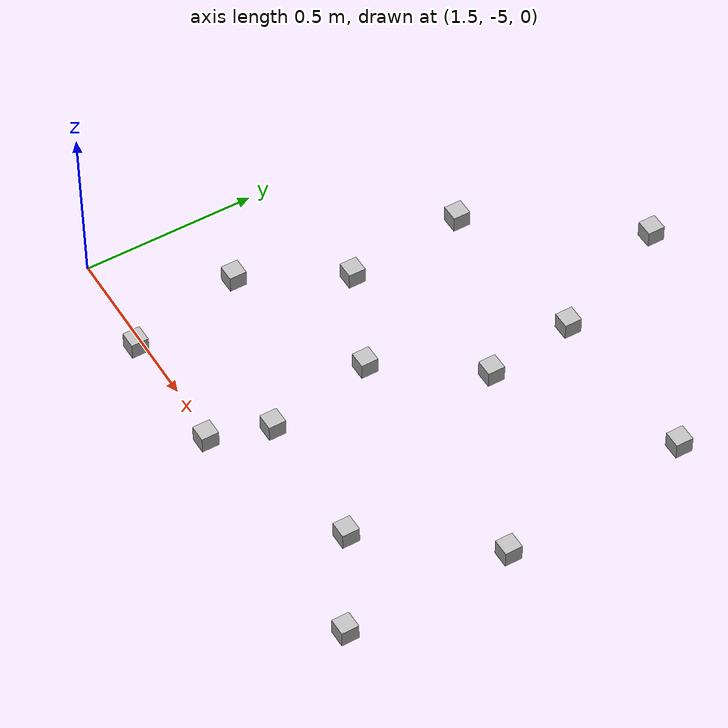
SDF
<sdf version="1.6">
 <world name="default">
  <model name="at0_1">
   <static>0</static>
   <link name="link">
    <inertial>
     <mass>0.01</mass>
     <inertia><ixx>4e-05</ixx><ixy>0</ixy><ixz>0</ixz><iyy>4e-05</iyy><iyz>0</iyz><izz>4e-05</izz></inertia>
    </inertial>
    <visual name="visual">
     <geometry><box><size>0.05 0.05 0.05</size></box></geometry>
     <material>
      <script>
       <uri>model://at0/materials/scripts</uri>
       <uri>model://at0/materials/textures</uri>
       <name>at0/Diffuse</name>
      </script>
     </material>
    </visual>
    <collision name="collision">
     <geometry><box><size>0.05 0.05 0.05</size></box></geometry>
     <surface><friction><ode><mu>0.8</mu><mu2>0.7</mu2></ode></friction></surface>
    </collision>
   </link>
   <pose>2.90292 -5.01991 0.025 0 -0 0</pose>
  </model>
  <model name="at0_3">
   <static>0</static>
   <link name="link">
    <inertial>
     <mass>0.01</mass>
     <inertia><ixx>4e-05</ixx><ixy>0</ixy><ixz>0</ixz><iyy>4e-05</iyy><iyz>0</iyz><izz>4e-05</izz></inertia>
    </inertial>
    <visual name="visual">
     <geometry><box><size>0.05 0.05 0.05</size></box></geometry>
     <material>
      <script>
       <uri>model://at0/materials/scripts</uri>
       <uri>model://at0/materials/textures</uri>
       <name>at0/Diffuse</name>
      </script>
     </material>
    </visual>
    <collision name="collision">
     <geometry><box><size>0.05 0.05 0.05</size></box></geometry>
     <surface><friction><ode><mu>0.8</mu><mu2>0.7</mu2></ode></friction></surface>
    </collision>
   </link>
   <pose>2.90118 -4.53855 0.025 0 -0 0</pose>
  </model>
  <model name="at0_4">
   <static>0</static>
   <link name="link">
    <inertial>
     <mass>0.01</mass>
     <inertia><ixx>4e-05</ixx><ixy>0</ixy><ixz>0</ixz><iyy>4e-05</iyy><iyz>0</iyz><izz>4e-05</izz></inertia>
    </inertial>
    <visual name="visual">
     <geometry><box><size>0.05 0.05 0.05</size></box></geometry>
     <material>
      <script>
       <uri>model://at0/materials/scripts</uri>
       <uri>model://at0/materials/textures</uri>
       <name>at0/Diffuse</name>
      </script>
     </material>
    </visual>
    <collision name="collision">
     <geometry><box><size>0.05 0.05 0.05</size></box></geometry>
     <surface><friction><ode><mu>0.8</mu><mu2>0.7</mu2></ode></friction></surface>
    </collision>
   </link>
   <pose>2.6418 -4.86366 0.025 0 -0 0</pose>
  </model>
  <model name="at0_6">
   <static>0</static>
   <link name="link">
    <inertial>
     <mass>0.01</mass>
     <inertia><ixx>4e-05</ixx><ixy>0</ixy><ixz>0</ixz><iyy>4e-05</iyy><iyz>0</iyz><izz>4e-05</izz></inertia>
    </inertial>
    <visual name="visual">
     <geometry><box><size>0.05 0.05 0.05</size></box></geometry>
     <material>
      <script>
       <uri>model://at0/materials/scripts</uri>
       <uri>model://at0/materials/textures</uri>
       <name>at0/Diffuse</name>
      </script>
     </material>
    </visual>
    <collision name="collision">
     <geometry><box><size>0.05 0.05 0.05</size></box></geometry>
     <surface><friction><ode><mu>0.8</mu><mu2>0.7</mu2></ode></friction></surface>
    </collision>
   </link>
   <pose>2.8308 -3.97412 0.025 0 -0 0</pose>
  </model>
  <model name="at0_7">
   <static>0</static>
   <link name="link">
    <inertial>
     <mass>0.01</mass>
     <inertia><ixx>4e-05</ixx><ixy>0</ixy><ixz>0</ixz><iyy>4e-05</iyy><iyz>0</iyz><izz>4e-05</izz></inertia>
    </inertial>
    <visual name="visual">
     <geometry><box><size>0.05 0.05 0.05</size></box></geometry>
     <material>
      <script>
       <uri>model://at0/materials/scripts</uri>
       <uri>model://at0/materials/textures</uri>
       <name>at0/Diffuse</name>
      </script>
     </material>
    </visual>
    <collision name="collision">
     <geometry><box><size>0.05 0.05 0.05</size></box></geometry>
     <surface><friction><ode><mu>0.8</mu><mu2>0.7</mu2></ode></friction></surface>
    </collision>
   </link>
   <pose>2.18519 -5.01696 0.025 0 -0 0</pose>
  </model>
  <model name="at0_8">
   <static>0</static>
   <link name="link">
    <inertial>
     <mass>0.01</mass>
     <inertia><ixx>4e-05</ixx><ixy>0</ixy><ixz>0</ixz><iyy>4e-05</iyy><iyz>0</iyz><izz>4e-05</izz></inertia>
    </inertial>
    <visual name="visual">
     <geometry><box><size>0.05 0.05 0.05</size></box></geometry>
     <material>
      <script>
       <uri>model://at0/materials/scripts</uri>
       <uri>model://at0/materials/textures</uri>
       <name>at0/Diffuse</name>
      </script>
     </material>
    </visual>
    <collision name="collision">
     <geometry><box><size>0.05 0.05 0.05</size></box></geometry>
     <surface><friction><ode><mu>0.8</mu><mu2>0.7</mu2></ode></friction></surface>
    </collision>
   </link>
   <pose>2.37755 -4.26466 0.025 0 -0 0</pose>
  </model>
  <model name="at0_9">
   <static>0</static>
   <link name="link">
    <inertial>
     <mass>0.01</mass>
     <inertia><ixx>4e-05</ixx><ixy>0</ixy><ixz>0</ixz><iyy>4e-05</iyy><iyz>0</iyz><izz>4e-05</izz></inertia>
    </inertial>
    <visual name="visual">
     <geometry><box><size>0.05 0.05 0.05</size></box></geometry>
     <material>
      <script>
       <uri>model://at0/materials/scripts</uri>
       <uri>model://at0/materials/textures</uri>
       <name>at0/Diffuse</name>
      </script>
     </material>
    </visual>
    <collision name="collision">
     <geometry><box><size>0.05 0.05 0.05</size></box></geometry>
     <surface><friction><ode><mu>0.8</mu><mu2>0.7</mu2></ode></friction></surface>
    </collision>
   </link>
   <pose>2.34186 -4.00283 0.025 0 -0 0</pose>
  </model>
  <model name="at0_10">
   <static>0</static>
   <link name="link">
    <inertial>
     <mass>0.01</mass>
     <inertia><ixx>4e-05</ixx><ixy>0</ixy><ixz>0</ixz><iyy>4e-05</iyy><iyz>0</iyz><izz>4e-05</izz></inertia>
    </inertial>
    <visual name="visual">
     <geometry><box><size>0.05 0.05 0.05</size></box></geometry>
     <material>
      <script>
       <uri>model://at0/materials/scripts</uri>
       <uri>model://at0/materials/textures</uri>
       <name>at0/Diffuse</name>
      </script>
     </material>
    </visual>
    <collision name="collision">
     <geometry><box><size>0.05 0.05 0.05</size></box></geometry>
     <surface><friction><ode><mu>0.8</mu><mu2>0.7</mu2></ode></friction></surface>
    </collision>
   </link>
   <pose>2.18387 -4.5361 0.025 0 -0 0</pose>
  </model>
  <model name="at0_11">
   <static>0</static>
   <link name="link">
    <inertial>
     <mass>0.01</mass>
     <inertia><ixx>4e-05</ixx><ixy>0</ixy><ixz>0</ixz><iyy>4e-05</iyy><iyz>0</iyz><izz>4e-05</izz></inertia>
    </inertial>
    <visual name="visual">
     <geometry><box><size>0.05 0.05 0.05</size></box></geometry>
     <material>
      <script>
       <uri>model://at0/materials/scripts</uri>
       <uri>model://at0/materials/textures</uri>
       <name>at0/Diffuse</name>
      </script>
     </material>
    </visual>
    <collision name="collision">
     <geometry><box><size>0.05 0.05 0.05</size></box></geometry>
     <surface><friction><ode><mu>0.8</mu><mu2>0.7</mu2></ode></friction></surface>
    </collision>
   </link>
   <pose>1.81365 -5.02114 0.025 0 -0 0</pose>
  </model>
  <model name="at0_12">
   <static>0</static>
   <link name="link">
    <inertial>
     <mass>0.01</mass>
     <inertia><ixx>4e-05</ixx><ixy>0</ixy><ixz>0</ixz><iyy>4e-05</iyy><iyz>0</iyz><izz>4e-05</izz></inertia>
    </inertial>
    <visual name="visual">
     <geometry><box><size>0.05 0.05 0.05</size></box></geometry>
     <material>
      <script>
       <uri>model://at0/materials/scripts</uri>
       <uri>model://at0/materials/textures</uri>
       <name>at0/Diffuse</name>
      </script>
     </material>
    </visual>
    <collision name="collision">
     <geometry><box><size>0.05 0.05 0.05</size></box></geometry>
     <surface><friction><ode><mu>0.8</mu><mu2>0.7</mu2></ode></friction></surface>
    </collision>
   </link>
   <pose>1.74232 -4.68368 0.025 0 -0 0</pose>
  </model>
  <model name="at0_13">
   <static>0</static>
   <link name="link">
    <inertial>
     <mass>0.01</mass>
     <inertia><ixx>4e-05</ixx><ixy>0</ixy><ixz>0</ixz><iyy>4e-05</iyy><iyz>0</iyz><izz>4e-05</izz></inertia>
    </inertial>
    <visual name="visual">
     <geometry><box><size>0.05 0.05 0.05</size></box></geometry>
     <material>
      <script>
       <uri>model://at0/materials/scripts</uri>
       <uri>model://at0/materials/textures</uri>
       <name>at0/Diffuse</name>
      </script>
     </material>
    </visual>
    <collision name="collision">
     <geometry><box><size>0.05 0.05 0.05</size></box></geometry>
     <surface><friction><ode><mu>0.8</mu><mu2>0.7</mu2></ode></friction></surface>
    </collision>
   </link>
   <pose>1.89638 -4.40466 0.025 0 -0 0</pose>
  </model>
  <model name="at0_14">
   <static>0</static>
   <link name="link">
    <inertial>
     <mass>0.01</mass>
     <inertia><ixx>4e-05</ixx><ixy>0</ixy><ixz>0</ixz><iyy>4e-05</iyy><iyz>0</iyz><izz>4e-05</izz></inertia>
    </inertial>
    <visual name="visual">
     <geometry><box><size>0.05 0.05 0.05</size></box></geometry>
     <material>
      <script>
       <uri>model://at0/materials/scripts</uri>
       <uri>model://at0/materials/textures</uri>
       <name>at0/Diffuse</name>
      </script>
     </material>
    </visual>
    <collision name="collision">
     <geometry><box><size>0.05 0.05 0.05</size></box></geometry>
     <surface><friction><ode><mu>0.8</mu><mu2>0.7</mu2></ode></friction></surface>
    </collision>
   </link>
   <pose>2.18129 -3.63427 0.025 0 -0 0</pose>
  </model>
  <model name="at0_15">
   <static>0</static>
   <link name="link">
    <inertial>
     <mass>0.01</mass>
     <inertia><ixx>4e-05</ixx><ixy>0</ixy><ixz>0</ixz><iyy>4e-05</iyy><iyz>0</iyz><izz>4e-05</izz></inertia>
    </inertial>
    <visual name="visual">
     <geometry><box><size>0.05 0.05 0.05</size></box></geometry>
     <material>
      <script>
       <uri>model://at0/materials/scripts</uri>
       <uri>model://at0/materials/textures</uri>
       <name>at0/Diffuse</name>
      </script>
     </material>
    </visual>
    <collision name="collision">
     <geometry><box><size>0.05 0.05 0.05</size></box></geometry>
     <surface><friction><ode><mu>0.8</mu><mu2>0.7</mu2></ode></friction></surface>
    </collision>
   </link>
   <pose>1.86544 -4.05695 0.025 0 -0 0</pose>
  </model>
  <model name="at0_16">
   <static>0</static>
   <link name="link">
    <inertial>
     <mass>0.01</mass>
     <inertia><ixx>4e-05</ixx><ixy>0</ixy><ixz>0</ixz><iyy>4e-05</iyy><iyz>0</iyz><izz>4e-05</izz></inertia>
    </inertial>
    <visual name="visual">
     <geometry><box><size>0.05 0.05 0.05</size></box></geometry>
     <material>
      <script>
       <uri>model://at0/materials/scripts</uri>
       <uri>model://at0/materials/textures</uri>
       <name>at0/Diffuse</name>
      </script>
     </material>
    </visual>
    <collision name="collision">
     <geometry><box><size>0.05 0.05 0.05</size></box></geometry>
     <surface><friction><ode><mu>0.8</mu><mu2>0.7</mu2></ode></friction></surface>
    </collision>
   </link>
   <pose>2.24091 -4.8486 0.025 0 -0 0</pose>
  </model>
 </world>
</sdf>
